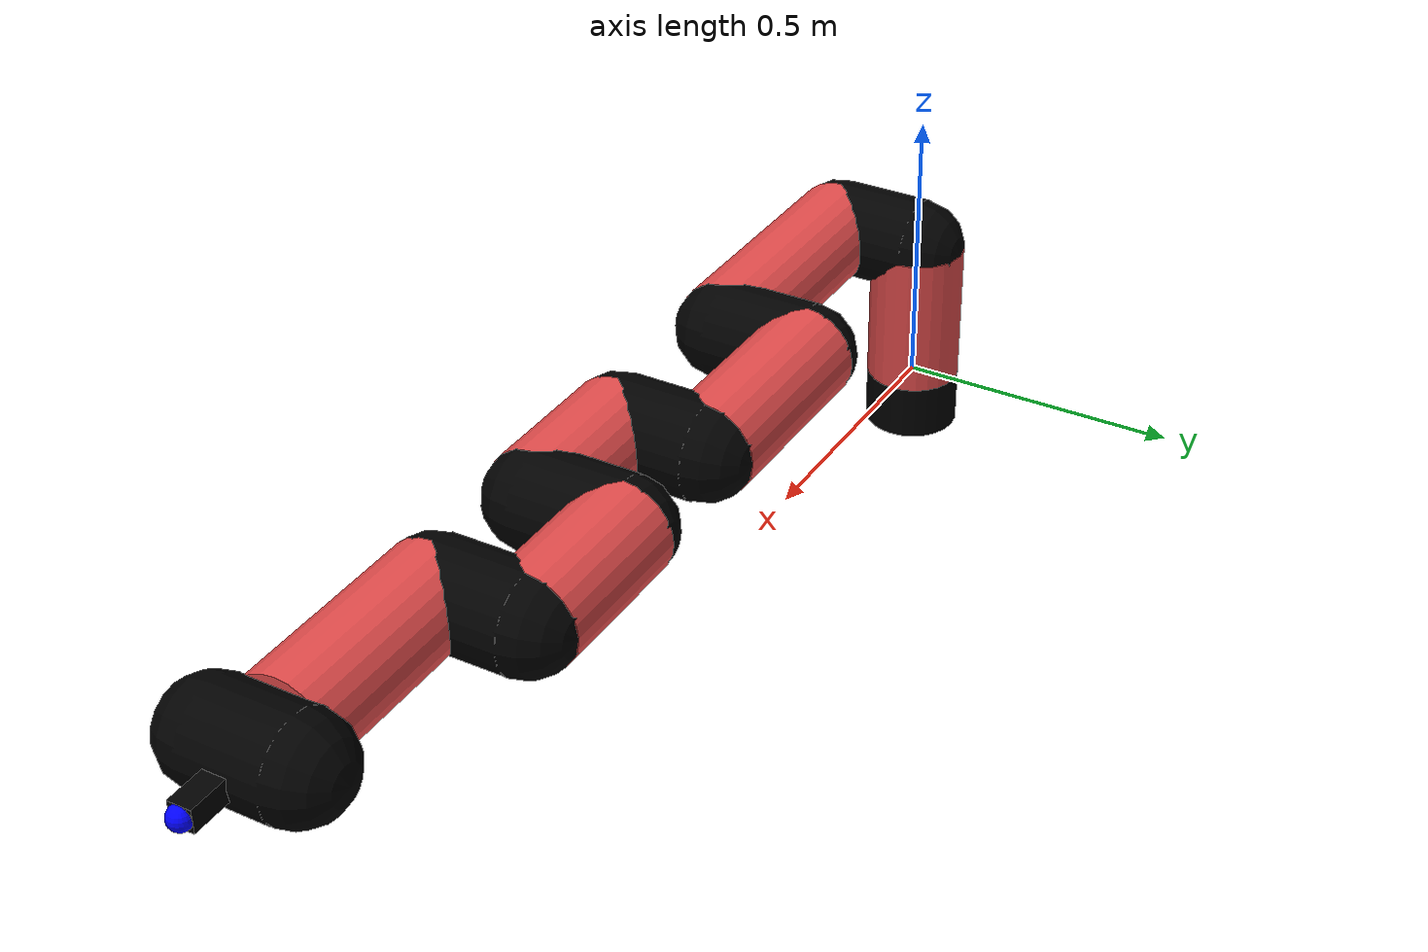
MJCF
<mujoco model="manipulator">
		<compiler angle="degree" coordinate="local" inertiafromgeom="auto" meshdir="meshes/"/>
		<option gravity="0 0 0" integrator="RK4" iterations="30" timestep="0.01"/>

		<default>
		<joint armature="1" limited="true" stiffness="10" damping="15" frictionloss="5.0"/>
		<geom conaffinity="1" condim="3" contype="1" friction=".5 .1 .1" margin="0.002"/>
		<motor ctrllimited="true"/>
		<position ctrllimited="true"/>
		</default>

		<asset>
		<texture builtin="gradient" height="100" rgb1="1.0 1.0 1.0" rgb2="1.0 1.0 1.0" type="skybox" width="100"/>
		<texture builtin="flat" height="32" name="arm_tex" rgb1="0.9 0.3 0.3" type="2d" width="32"/>
		<texture builtin="flat" height="32" name="gripper_tex" rgb1="0.0 0.0 0.0" type="cube" width="32"/>

		<material name="arm_mat" shininess="0.1" specular="0.1" texture="arm_tex"/>
		<material name="gripper_mat" shininess="1" specular="1" texture="gripper_tex"/>
		</asset>

		<worldbody>
		<light cutoff="45" diffuse=".8 .8 .8" dir="0 0.16 -1" directional="false" name="light" pos="0 -2.0 8.0" specular="0.3 0.3 0.3"/>

		<body name="base_link" pos="0 0 -0.1">
		<geom fromto="0 0 0 0 0 0.1" material="arm_mat" name="base_link" rgba="0.0 0.0 0.0 1" size="0.085" type="cylinder"/>
		</body>

		<body name="l1" pos="0 0 0">
<geom fromto="0 0 0 0 0 0.26" material="arm_mat" name="l1" rgba="0.9 0.3 0.3 1" size="0.085" type="cylinder"/>
<geom fromto="0 0 0.26 0 -0.16 0.26" material="arm_mat" name="l1_ex" rgba="0.0 0.0 0.0 1" size="0.085" type="capsule"/>
<joint axis="0 0 1" name="j1" pos="0 0 0" range="-90 90" damping="30.2" frictionloss="10.15"/>

<body name="l2" pos="0 -0.16 0.26">
<geom fromto="0 0 0 0.43 0 0" material="arm_mat" name="l2" rgba="0.9 0.3 0.3 1" size="0.085" type="cylinder"/>
<geom fromto="0.43 0 0 0.43 0.16 0" material="arm_mat" name="l2_ex" rgba="0.0 0.0 0.0 1" size="0.085" type="capsule"/>
<joint axis="0.0 1.0 0.0" name="j2" pos="0 0 0" range="-90 60" damping="30.6" frictionloss="9.62"/>

<body name="l3" pos="0.43 0.16 0">
<geom fromto="0 0 0 0.34 0 0" material="arm_mat" name="l3" rgba="0.9 0.3 0.3 1" size="0.085" type="cylinder"/>
<geom fromto="0.34 0 0 0.34 -0.16 0" material="arm_mat" name="l3_ex" rgba="0.0 0.0 0.0 1" size="0.085" type="capsule"/>
<joint axis="0.0 1.0 0.0" name="j3" pos="0 0 0" range="-30 60" damping="36.45" frictionloss="10.06"/>

<body name="l4" pos="0.34 -0.16 0">
<geom fromto="0 0 0 0.24 0 0" material="arm_mat" name="l4" rgba="0.9 0.3 0.3 1" size="0.085" type="cylinder"/>
<geom fromto="0.24 0 0 0.24 0.16 0" material="arm_mat" name="l4_ex" rgba="0.0 0.0 0.0 1" size="0.085" type="capsule"/>
<joint axis="0.0 1.0 0.0" name="j4" pos="0 0 0" range="-30 60" damping="25.54" frictionloss="9.45"/>

<body name="l5" pos="0.24 0.16 0">
<geom fromto="0 0 0 0.26 0 0" material="arm_mat" name="l5" rgba="0.9 0.3 0.3 1" size="0.085" type="cylinder"/>
<geom fromto="0.26 0 0 0.26 -0.16 0" material="arm_mat" name="l5_ex" rgba="0.0 0.0 0.0 1" size="0.085" type="capsule"/>
<joint axis="0.0 1.0 0.0" name="j5" pos="0 0 0" range="-30 60" damping="30.38" frictionloss="11.23"/>

<body name="l6" pos="0.26 -0.16 0">
<geom fromto="0 0 0 0.35 0 0" material="arm_mat" name="l6" rgba="0.9 0.3 0.3 1" size="0.085" type="cylinder"/>
<joint axis="0.0 1.0 0.0" name="j6" pos="0 0 0" range="-30 60" damping="31.55" frictionloss="11.26"/>

<body name="gripper" pos="0.35 0 0">
<geom fromto="0.05 -0.07 0 0.05 0.07 0" material="gripper_mat" name="gripper" rgba="0.0 0.0 0.0 1" size="0.085" type="capsule"/><joint axis="1 0 0" name="j7" pos="0 0 0" range="-90 90" damping="15" frictionloss="5.0"/><body name="finger" pos="0.1 0 0">
<geom fromto="0 0.0 0 0.1 0.0 0" material="gripper_mat" name="finger" rgba="0.0 0.0 0.0 1" size="0.020 0.06 0.06" type="box"/>
</body>
<site name="current" pos="0.2 0. 0.0" rgba="0. 0. 1.0 1" size="0.02" type="sphere"/>
</body>
</body>
</body>
</body>
</body>
</body>
</body>
</worldbody>
<actuator>
<motor ctrllimited="true" ctrlrange="-1.0 1.0" joint="j1" gear="72.62"/>
<motor ctrllimited="true" ctrlrange="-1.0 1.0" joint="j2" gear="81.76"/>
<motor ctrllimited="true" ctrlrange="-1.0 1.0" joint="j3" gear="84.04"/>
<motor ctrllimited="true" ctrlrange="-1.0 1.0" joint="j4" gear="81.81"/>
<motor ctrllimited="true" ctrlrange="-1.0 1.0" joint="j5" gear="88.64"/>
<motor ctrllimited="true" ctrlrange="-1.0 1.0" joint="j6" gear="85.6"/>
<motor ctrllimited="true" ctrlrange="-1.0 1.0" joint="j7" gear="80"/>
</actuator>
</mujoco>
